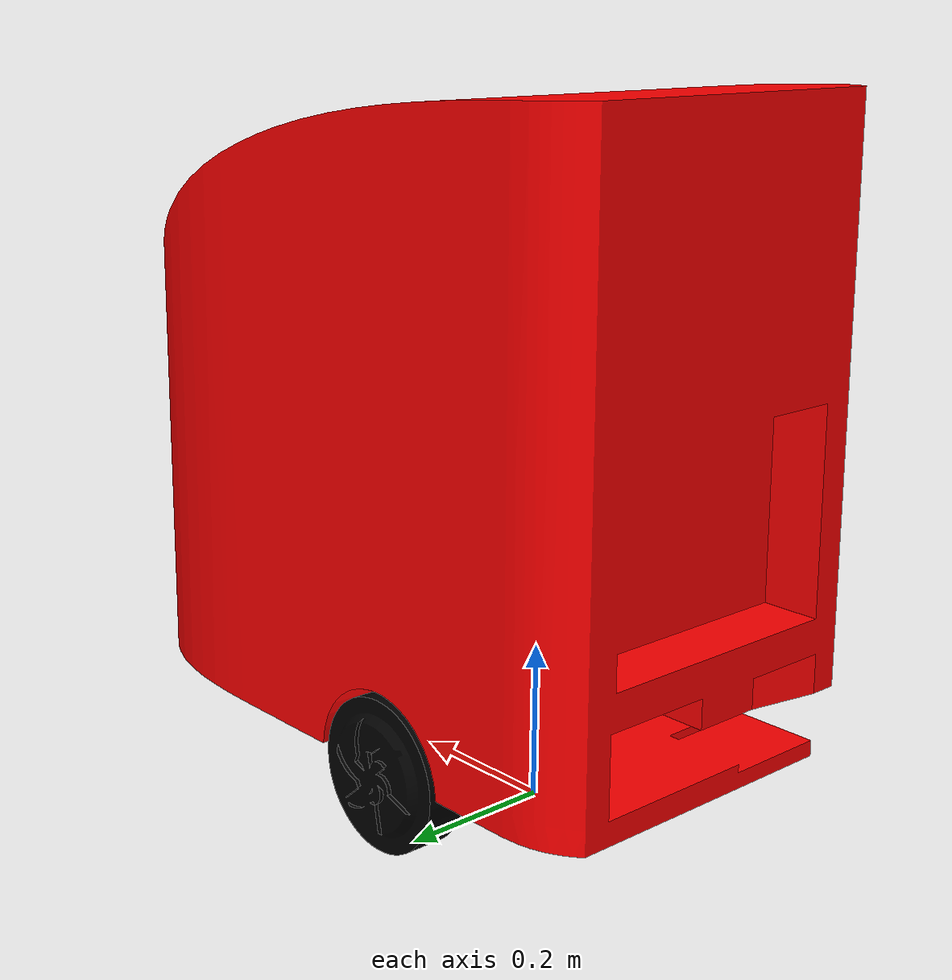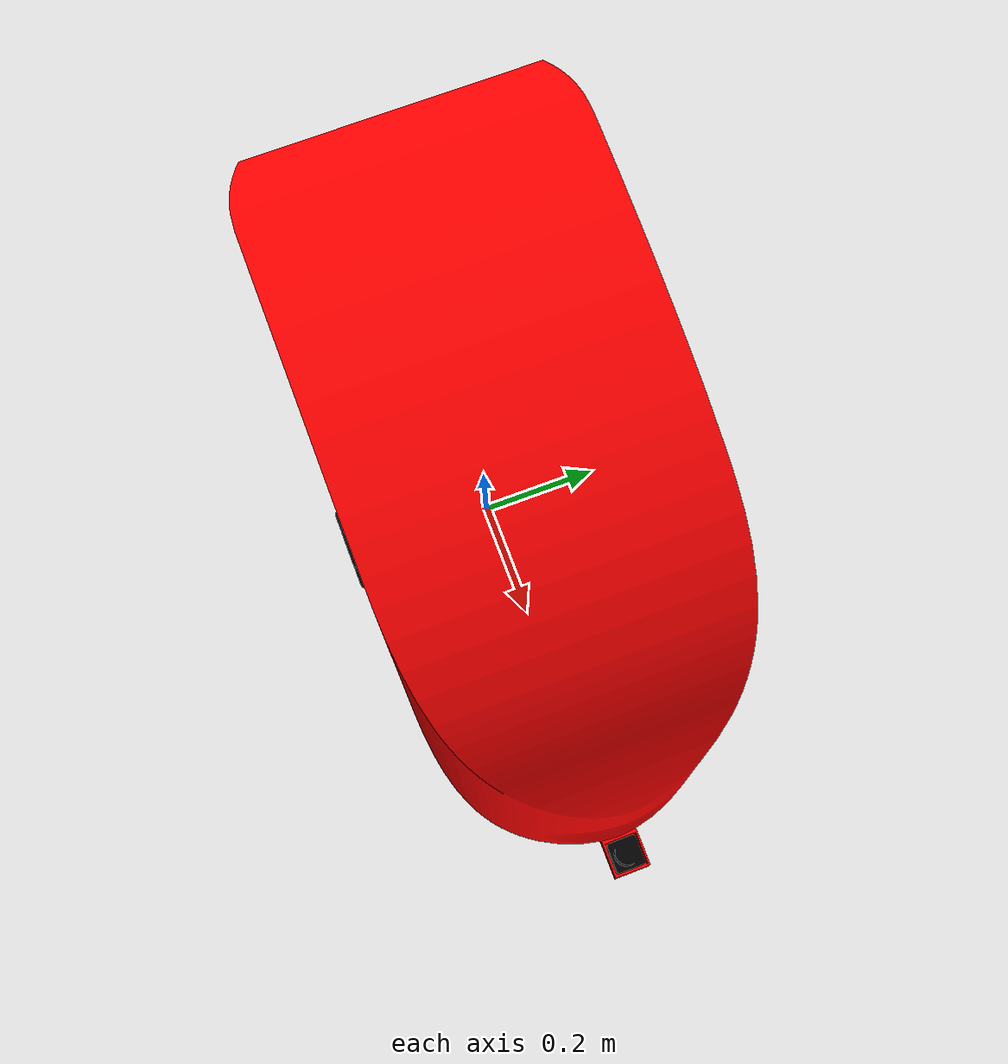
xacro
<?xml version="1.0" ?>
<robot name="juwarabot" xmlns:xacro="http://www.ros.org/wiki/xacro">

<xacro:include filename="$(find juwarabot_description)/urdf/materials.xacro" />
<xacro:include filename="$(find juwarabot_description)/urdf/juwarabot.trans" />
<xacro:include filename="$(find juwarabot_description)/urdf/juwarabot.gazebo" />
<link name="base_link">
  <inertial>
    <origin xyz="0.13123148613922211 -0.0001730503856538379 0.4724766102022406" rpy="0 0 0"/>
    <mass value="2220.013232322395"/>
    <inertia ixx="148.384965" iyy="227.779064" izz="164.373477" ixy="-0.534166" iyz="0.117086" ixz="23.522908"/>
  </inertial>
  <visual>
    <origin xyz="0 0 0" rpy="0 0 0"/>
    <geometry>
      <mesh filename="package://juwarabot_description/meshes/base_link.stl" scale="0.001 0.001 0.001"/>
    </geometry>
    <material name="red"/>
  </visual>
  <collision>
    <origin xyz="0 0 0" rpy="0 0 0"/>
    <geometry>
      <mesh filename="package://juwarabot_description/meshes/base_link.stl" scale="0.001 0.001 0.001"/>
    </geometry>
  </collision>
</link>

<link name="caster_1">
  <inertial>
    <origin xyz="1.1102230246251565e-16 8.940148546178448e-17 -0.04489390103718115" rpy="0 0 0"/>
    <mass value="2.689425199543993"/>
    <inertia ixx="0.002645" iyy="0.002645" izz="0.001561" ixy="0.0" iyz="-0.0" ixz="-0.0"/>
  </inertial>
  <visual>
    <origin xyz="-0.3975 -0.0 -0.101" rpy="0 0 0"/>
    <geometry>
      <mesh filename="package://juwarabot_description/meshes/caster_1.stl" scale="0.001 0.001 0.001"/>
    </geometry>
    <material name="black"/>
  </visual>
  <collision>
    <origin xyz="-0.3975 -0.0 -0.101" rpy="0 0 0"/>
    <geometry>
      <mesh filename="package://juwarabot_description/meshes/caster_1.stl" scale="0.001 0.001 0.001"/>
    </geometry>
  </collision>
</link>

<link name="right_wheel_1">
  <inertial>
    <origin xyz="5.198905155686176e-06 0.04537695121096172 1.0177969578251123e-13" rpy="0 0 0"/>
    <mass value="10.297047218995939"/>
    <inertia ixx="0.029535" iyy="0.051878" izz="0.029535" ixy="3e-06" iyz="0.0" ixz="0.0"/>
  </inertial>
  <visual>
    <origin xyz="-0.0135 -0.175 -0.0952" rpy="0 0 0"/>
    <geometry>
      <mesh filename="package://juwarabot_description/meshes/right_wheel_1.stl" scale="0.001 0.001 0.001"/>
    </geometry>
    <material name="black"/>
  </visual>
  <collision>
    <origin xyz="-0.0135 -0.175 -0.0952" rpy="0 0 0"/>
    <geometry>
      <mesh filename="package://juwarabot_description/meshes/right_wheel_1.stl" scale="0.001 0.001 0.001"/>
    </geometry>
  </collision>
</link>

<link name="left_wheel_1">
  <inertial>
    <origin xyz="5.1989051557139315e-06 -0.04537695121096172 -8.784639682346551e-15" rpy="0 0 0"/>
    <mass value="10.297047218995926"/>
    <inertia ixx="0.029535" iyy="0.051878" izz="0.029535" ixy="-3e-06" iyz="0.0" ixz="-0.0"/>
  </inertial>
  <visual>
    <origin xyz="-0.0135 0.175 -0.0952" rpy="0 0 0"/>
    <geometry>
      <mesh filename="package://juwarabot_description/meshes/left_wheel_1.stl" scale="0.001 0.001 0.001"/>
    </geometry>
    <material name="black"/>
  </visual>
  <collision>
    <origin xyz="-0.0135 0.175 -0.0952" rpy="0 0 0"/>
    <geometry>
      <mesh filename="package://juwarabot_description/meshes/left_wheel_1.stl" scale="0.001 0.001 0.001"/>
    </geometry>
  </collision>
</link>

<link name="lidar_1">
  <inertial>
    <origin xyz="0.0008687623293602842 -1.897527103092979e-15 0.021929105936567536" rpy="0 0 0"/>
    <mass value="0.7402162573890814"/>
    <inertia ixx="0.000298" iyy="0.000289" izz="0.000246" ixy="0.0" iyz="0.0" ixz="-1.2e-05"/>
  </inertial>
  <visual>
    <origin xyz="-0.6575 0.0 -0.076" rpy="0 0 0"/>
    <geometry>
      <mesh filename="package://juwarabot_description/meshes/lidar_1.stl" scale="0.001 0.001 0.001"/>
    </geometry>
    <material name="black"/>
  </visual>
  <collision>
    <origin xyz="-0.6575 0.0 -0.076" rpy="0 0 0"/>
    <geometry>
      <mesh filename="package://juwarabot_description/meshes/lidar_1.stl" scale="0.001 0.001 0.001"/>
    </geometry>
  </collision>
</link>
<joint name="caster_joint" type="fixed">
  <origin xyz="0.3975 0.0 0.101" rpy="0 0 0"/>
  <parent link="base_link"/>
  <child link="caster_1"/>
</joint>

<joint name="left_wheel_joint" type="continuous">
  <origin xyz="0.0135 0.175 0.0952" rpy="0 0 0"/>
  <parent link="base_link"/>
  <child link="right_wheel_1"/>
  <axis xyz="0 0 1"/>
</joint>

<joint name="right_wheel_joint" type="continuous">
  <origin xyz="0.0135 -0.175 0.0952" rpy="0 0 0"/>
  <parent link="base_link"/>
  <child link="left_wheel_1"/>
  <axis xyz="0 0 1"/>
</joint>

<joint name="lidar_joint" type="fixed">
  <origin xyz="0.6575 0.0 0.076" rpy="0 0 0"/>
  <parent link="base_link"/>
  <child link="lidar_1"/>
</joint>

</robot>

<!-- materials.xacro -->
<robot name="juwarabot" xmlns:xacro="http://www.ros.org/wiki/xacro" >

<material name="silver">
  <color rgba="0.700 0.700 0.700 1.000"/>
</material>

<material name="black">
  <color rgba="0.0 0.000 0.000 1.000"/>
</material>

<material name="red">
  <color rgba="255.000 0.000 0.000 1.000"/>
</material>

</robot>

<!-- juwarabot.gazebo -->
<robot name="juwarabot" xmlns:xacro="http://www.ros.org/wiki/xacro" >

<xacro:property name="body_color" value="Gazebo/Silver" />

<gazebo>
  <plugin name="control" filename="libgazebo_ros_control.so"/>
</gazebo>
<gazebo reference="base_link">
  <material>${body_color}</material>
  <mu1>0.2</mu1>
  <mu2>0.2</mu2>
  <selfCollide>true</selfCollide>
  <gravity>true</gravity>
</gazebo>

<gazebo reference="caster_1">
  <material>${body_color}</material>
  <mu1>0.2</mu1>
  <mu2>0.2</mu2>
  <selfCollide>true</selfCollide>
</gazebo>

<gazebo reference="right_wheel_1">
  <material>${body_color}</material>
  <mu1>0.2</mu1>
  <mu2>0.2</mu2>
  <selfCollide>true</selfCollide>
</gazebo>

<gazebo reference="left_wheel_1">
  <material>${body_color}</material>
  <mu1>0.2</mu1>
  <mu2>0.2</mu2>
  <selfCollide>true</selfCollide>
</gazebo>

<gazebo reference="lidar_1">
  <material>${body_color}</material>
  <mu1>0.2</mu1>
  <mu2>0.2</mu2>
  <selfCollide>true</selfCollide>
</gazebo>

</robot>
